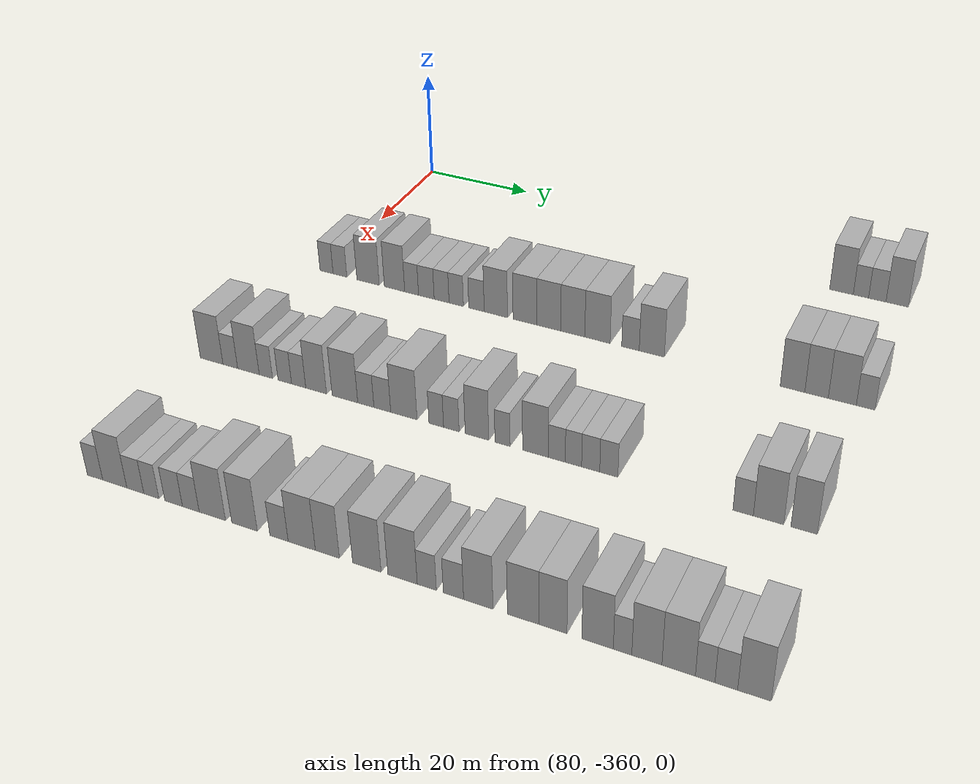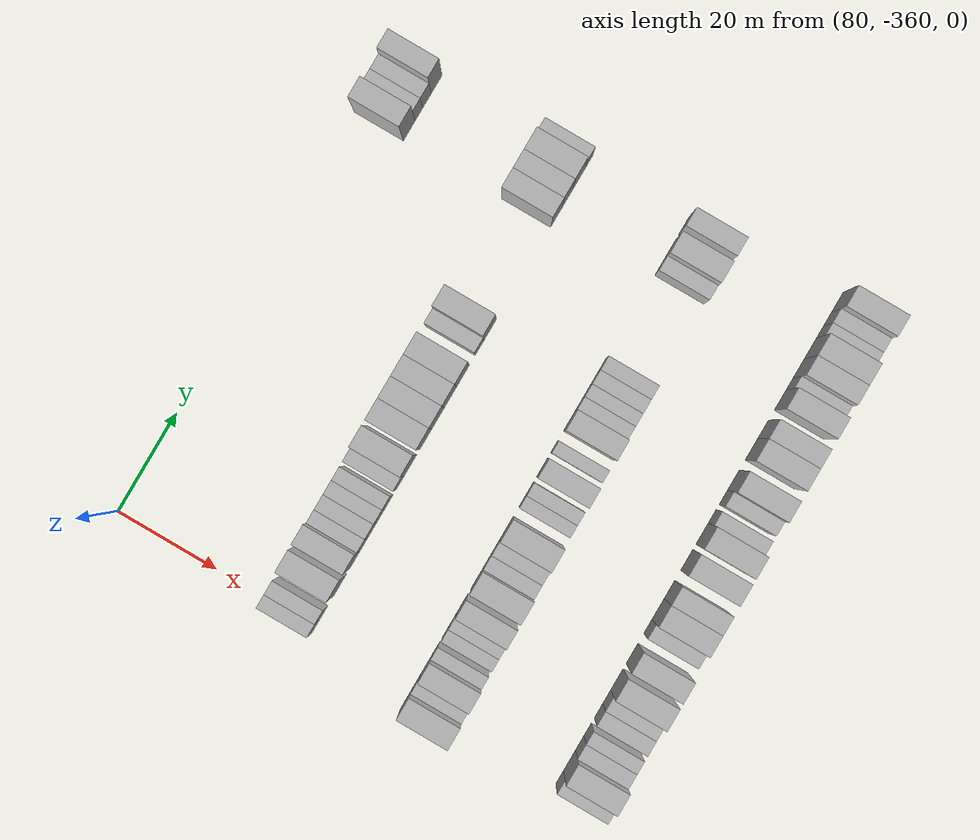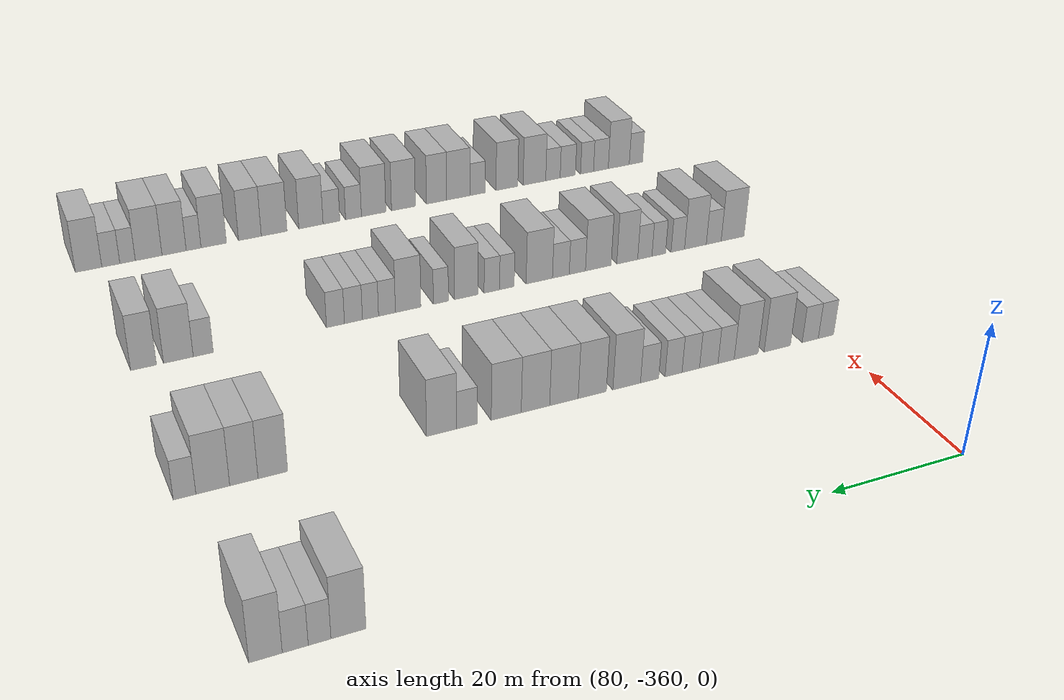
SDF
<sdf version="1.6">
 <world name="default">
  <model name="building_510">
   <static>1</static>
   <pose>85.0000 -276.7243 0 0.000000 0.000000 0.000000</pose>
   <link name="link">
    <pose>0 0 4.50 0 0 0</pose>
    <collision name="collision"><geometry><box><size>10.0000 4.0553 9.0000</size></box></geometry></collision>
    <visual name="visual">
     <cast_shadows>0</cast_shadows>
     <geometry><box><size>10.0000 4.0553 9.0000</size></box></geometry>
     <material>
      <script>
       <uri>model://HANNAS_wall/materials/scripts</uri>
       <uri>model://HANNAS_wall/materials/textures</uri>
       <name>vrc/HANNAS_wall</name>
      </script>
     </material>
    </visual>
   </link>
  </model>
  <model name="building_511">
   <static>1</static>
   <pose>85.0000 -273.3975 0 0.000000 0.000000 0.000000</pose>
   <link name="link">
    <pose>0 0 3.00 0 0 0</pose>
    <collision name="collision"><geometry><box><size>10.0000 2.5983 6.0000</size></box></geometry></collision>
    <visual name="visual">
     <cast_shadows>0</cast_shadows>
     <geometry><box><size>10.0000 2.5983 6.0000</size></box></geometry>
     <material>
      <script>
       <uri>model://HANNAS_wall/materials/scripts</uri>
       <uri>model://HANNAS_wall/materials/textures</uri>
       <name>vrc/HANNAS_wall</name>
      </script>
     </material>
    </visual>
   </link>
  </model>
  <model name="building_512">
   <static>1</static>
   <pose>85.0000 -270.6278 0 0.000000 0.000000 0.000000</pose>
   <link name="link">
    <pose>0 0 3.00 0 0 0</pose>
    <collision name="collision"><geometry><box><size>10.0000 2.9410 6.0000</size></box></geometry></collision>
    <visual name="visual">
     <cast_shadows>0</cast_shadows>
     <geometry><box><size>10.0000 2.9410 6.0000</size></box></geometry>
     <material>
      <script>
       <uri>model://HANNAS_wall/materials/scripts</uri>
       <uri>model://HANNAS_wall/materials/textures</uri>
       <name>vrc/HANNAS_wall</name>
      </script>
     </material>
    </visual>
   </link>
  </model>
  <model name="building_513">
   <static>1</static>
   <pose>85.0000 -267.2847 0 0.000000 0.000000 0.000000</pose>
   <link name="link">
    <pose>0 0 4.50 0 0 0</pose>
    <collision name="collision"><geometry><box><size>10.0000 3.7452 9.0000</size></box></geometry></collision>
    <visual name="visual">
     <cast_shadows>0</cast_shadows>
     <geometry><box><size>10.0000 3.7452 9.0000</size></box></geometry>
     <material>
      <script>
       <uri>model://HANNAS_wall/materials/scripts</uri>
       <uri>model://HANNAS_wall/materials/textures</uri>
       <name>vrc/HANNAS_wall</name>
      </script>
     </material>
    </visual>
   </link>
  </model>
  <model name="building_721">
   <static>1</static>
   <pose>115.0000 -359.6324 0 0.000000 0.000000 0.000000</pose>
   <link name="link">
    <pose>0 0 3.00 0 0 0</pose>
    <collision name="collision"><geometry><box><size>10.0000 2.6164 6.0000</size></box></geometry></collision>
    <visual name="visual">
     <cast_shadows>0</cast_shadows>
     <geometry><box><size>10.0000 2.6164 6.0000</size></box></geometry>
     <material>
      <script>
       <uri>model://HANNAS_wall/materials/scripts</uri>
       <uri>model://HANNAS_wall/materials/textures</uri>
       <name>vrc/HANNAS_wall</name>
      </script>
     </material>
    </visual>
   </link>
  </model>
  <model name="building_722">
   <static>1</static>
   <pose>115.0000 -356.9533 0 0.000000 0.000000 0.000000</pose>
   <link name="link">
    <pose>0 0 3.00 0 0 0</pose>
    <collision name="collision"><geometry><box><size>10.0000 2.7418 6.0000</size></box></geometry></collision>
    <visual name="visual">
     <cast_shadows>0</cast_shadows>
     <geometry><box><size>10.0000 2.7418 6.0000</size></box></geometry>
     <material>
      <script>
       <uri>model://HANNAS_wall/materials/scripts</uri>
       <uri>model://HANNAS_wall/materials/textures</uri>
       <name>vrc/HANNAS_wall</name>
      </script>
     </material>
    </visual>
   </link>
  </model>
  <model name="building_723">
   <static>1</static>
   <pose>115.0000 -351.3896 0 0.000000 0.000000 0.000000</pose>
   <link name="link">
    <pose>0 0 4.50 0 0 0</pose>
    <collision name="collision"><geometry><box><size>10.0000 4.3855 9.0000</size></box></geometry></collision>
    <visual name="visual">
     <cast_shadows>0</cast_shadows>
     <geometry><box><size>10.0000 4.3855 9.0000</size></box></geometry>
     <material>
      <script>
       <uri>model://HANNAS_wall/materials/scripts</uri>
       <uri>model://HANNAS_wall/materials/textures</uri>
       <name>vrc/HANNAS_wall</name>
      </script>
     </material>
    </visual>
   </link>
  </model>
  <model name="building_724">
   <static>1</static>
   <pose>115.0000 -346.2307 0 0.000000 0.000000 0.000000</pose>
   <link name="link">
    <pose>0 0 4.50 0 0 0</pose>
    <collision name="collision"><geometry><box><size>10.0000 3.9325 9.0000</size></box></geometry></collision>
    <visual name="visual">
     <cast_shadows>0</cast_shadows>
     <geometry><box><size>10.0000 3.9325 9.0000</size></box></geometry>
     <material>
      <script>
       <uri>model://HANNAS_wall/materials/scripts</uri>
       <uri>model://HANNAS_wall/materials/textures</uri>
       <name>vrc/HANNAS_wall</name>
      </script>
     </material>
    </visual>
   </link>
  </model>
  <model name="building_725">
   <static>1</static>
   <pose>115.0000 -342.9398 0 0.000000 0.000000 0.000000</pose>
   <link name="link">
    <pose>0 0 3.00 0 0 0</pose>
    <collision name="collision"><geometry><box><size>10.0000 2.6493 6.0000</size></box></geometry></collision>
    <visual name="visual">
     <cast_shadows>0</cast_shadows>
     <geometry><box><size>10.0000 2.6493 6.0000</size></box></geometry>
     <material>
      <script>
       <uri>model://HANNAS_wall/materials/scripts</uri>
       <uri>model://HANNAS_wall/materials/textures</uri>
       <name>vrc/HANNAS_wall</name>
      </script>
     </material>
    </visual>
   </link>
  </model>
  <model name="building_726">
   <static>1</static>
   <pose>115.0000 -340.1281 0 0.000000 0.000000 0.000000</pose>
   <link name="link">
    <pose>0 0 3.00 0 0 0</pose>
    <collision name="collision"><geometry><box><size>10.0000 2.9741 6.0000</size></box></geometry></collision>
    <visual name="visual">
     <cast_shadows>0</cast_shadows>
     <geometry><box><size>10.0000 2.9741 6.0000</size></box></geometry>
     <material>
      <script>
       <uri>model://HANNAS_wall/materials/scripts</uri>
       <uri>model://HANNAS_wall/materials/textures</uri>
       <name>vrc/HANNAS_wall</name>
      </script>
     </material>
    </visual>
   </link>
  </model>
  <model name="building_727">
   <static>1</static>
   <pose>115.0000 -337.2382 0 0.000000 0.000000 0.000000</pose>
   <link name="link">
    <pose>0 0 3.00 0 0 0</pose>
    <collision name="collision"><geometry><box><size>10.0000 2.8057 6.0000</size></box></geometry></collision>
    <visual name="visual">
     <cast_shadows>0</cast_shadows>
     <geometry><box><size>10.0000 2.8057 6.0000</size></box></geometry>
     <material>
      <script>
       <uri>model://HANNAS_wall/materials/scripts</uri>
       <uri>model://HANNAS_wall/materials/textures</uri>
       <name>vrc/HANNAS_wall</name>
      </script>
     </material>
    </visual>
   </link>
  </model>
  <model name="building_728">
   <static>1</static>
   <pose>115.0000 -334.4908 0 0.000000 0.000000 0.000000</pose>
   <link name="link">
    <pose>0 0 3.00 0 0 0</pose>
    <collision name="collision"><geometry><box><size>10.0000 2.6891 6.0000</size></box></geometry></collision>
    <visual name="visual">
     <cast_shadows>0</cast_shadows>
     <geometry><box><size>10.0000 2.6891 6.0000</size></box></geometry>
     <material>
      <script>
       <uri>model://HANNAS_wall/materials/scripts</uri>
       <uri>model://HANNAS_wall/materials/textures</uri>
       <name>vrc/HANNAS_wall</name>
      </script>
     </material>
    </visual>
   </link>
  </model>
  <model name="building_729">
   <static>1</static>
   <pose>115.0000 -330.7202 0 0.000000 0.000000 0.000000</pose>
   <link name="link">
    <pose>0 0 3.00 0 0 0</pose>
    <collision name="collision"><geometry><box><size>10.0000 2.8522 6.0000</size></box></geometry></collision>
    <visual name="visual">
     <cast_shadows>0</cast_shadows>
     <geometry><box><size>10.0000 2.8522 6.0000</size></box></geometry>
     <material>
      <script>
       <uri>model://HANNAS_wall/materials/scripts</uri>
       <uri>model://HANNAS_wall/materials/textures</uri>
       <name>vrc/HANNAS_wall</name>
      </script>
     </material>
    </visual>
   </link>
  </model>
  <model name="building_730">
   <static>1</static>
   <pose>115.0000 -327.1550 0 0.000000 0.000000 0.000000</pose>
   <link name="link">
    <pose>0 0 4.50 0 0 0</pose>
    <collision name="collision"><geometry><box><size>10.0000 4.2782 9.0000</size></box></geometry></collision>
    <visual name="visual">
     <cast_shadows>0</cast_shadows>
     <geometry><box><size>10.0000 4.2782 9.0000</size></box></geometry>
     <material>
      <script>
       <uri>model://HANNAS_wall/materials/scripts</uri>
       <uri>model://HANNAS_wall/materials/textures</uri>
       <name>vrc/HANNAS_wall</name>
      </script>
     </material>
    </visual>
   </link>
  </model>
  <model name="building_731">
   <static>1</static>
   <pose>115.0000 -321.8719 0 0.000000 0.000000 0.000000</pose>
   <link name="link">
    <pose>0 0 4.50 0 0 0</pose>
    <collision name="collision"><geometry><box><size>10.0000 4.2880 9.0000</size></box></geometry></collision>
    <visual name="visual">
     <cast_shadows>0</cast_shadows>
     <geometry><box><size>10.0000 4.2880 9.0000</size></box></geometry>
     <material>
      <script>
       <uri>model://HANNAS_wall/materials/scripts</uri>
       <uri>model://HANNAS_wall/materials/textures</uri>
       <name>vrc/HANNAS_wall</name>
      </script>
     </material>
    </visual>
   </link>
  </model>
  <model name="building_732">
   <static>1</static>
   <pose>115.0000 -317.5888 0 0.000000 0.000000 0.000000</pose>
   <link name="link">
    <pose>0 0 4.50 0 0 0</pose>
    <collision name="collision"><geometry><box><size>10.0000 4.2781 9.0000</size></box></geometry></collision>
    <visual name="visual">
     <cast_shadows>0</cast_shadows>
     <geometry><box><size>10.0000 4.2781 9.0000</size></box></geometry>
     <material>
      <script>
       <uri>model://HANNAS_wall/materials/scripts</uri>
       <uri>model://HANNAS_wall/materials/textures</uri>
       <name>vrc/HANNAS_wall</name>
      </script>
     </material>
    </visual>
   </link>
  </model>
  <model name="building_733">
   <static>1</static>
   <pose>115.0000 -313.3438 0 0.000000 0.000000 0.000000</pose>
   <link name="link">
    <pose>0 0 4.50 0 0 0</pose>
    <collision name="collision"><geometry><box><size>10.0000 4.2119 9.0000</size></box></geometry></collision>
    <visual name="visual">
     <cast_shadows>0</cast_shadows>
     <geometry><box><size>10.0000 4.2119 9.0000</size></box></geometry>
     <material>
      <script>
       <uri>model://HANNAS_wall/materials/scripts</uri>
       <uri>model://HANNAS_wall/materials/textures</uri>
       <name>vrc/HANNAS_wall</name>
      </script>
     </material>
    </visual>
   </link>
  </model>
  <model name="building_734">
   <static>1</static>
   <pose>115.0000 -309.0474 0 0.000000 0.000000 0.000000</pose>
   <link name="link">
    <pose>0 0 4.50 0 0 0</pose>
    <collision name="collision"><geometry><box><size>10.0000 4.3809 9.0000</size></box></geometry></collision>
    <visual name="visual">
     <cast_shadows>0</cast_shadows>
     <geometry><box><size>10.0000 4.3809 9.0000</size></box></geometry>
     <material>
      <script>
       <uri>model://HANNAS_wall/materials/scripts</uri>
       <uri>model://HANNAS_wall/materials/textures</uri>
       <name>vrc/HANNAS_wall</name>
      </script>
     </material>
    </visual>
   </link>
  </model>
  <model name="building_735">
   <static>1</static>
   <pose>115.0000 -303.3682 0 0.000000 0.000000 0.000000</pose>
   <link name="link">
    <pose>0 0 3.00 0 0 0</pose>
    <collision name="collision"><geometry><box><size>10.0000 2.9775 6.0000</size></box></geometry></collision>
    <visual name="visual">
     <cast_shadows>0</cast_shadows>
     <geometry><box><size>10.0000 2.9775 6.0000</size></box></geometry>
     <material>
      <script>
       <uri>model://HANNAS_wall/materials/scripts</uri>
       <uri>model://HANNAS_wall/materials/textures</uri>
       <name>vrc/HANNAS_wall</name>
      </script>
     </material>
    </visual>
   </link>
  </model>
  <model name="building_736">
   <static>1</static>
   <pose>115.0000 -299.7547 0 0.000000 0.000000 0.000000</pose>
   <link name="link">
    <pose>0 0 4.50 0 0 0</pose>
    <collision name="collision"><geometry><box><size>10.0000 4.2496 9.0000</size></box></geometry></collision>
    <visual name="visual">
     <cast_shadows>0</cast_shadows>
     <geometry><box><size>10.0000 4.2496 9.0000</size></box></geometry>
     <material>
      <script>
       <uri>model://HANNAS_wall/materials/scripts</uri>
       <uri>model://HANNAS_wall/materials/textures</uri>
       <name>vrc/HANNAS_wall</name>
      </script>
     </material>
    </visual>
   </link>
  </model>
  <model name="building_737">
   <static>1</static>
   <pose>115.0000 -276.8342 0 0.000000 0.000000 0.000000</pose>
   <link name="link">
    <pose>0 0 4.50 0 0 0</pose>
    <collision name="collision"><geometry><box><size>10.0000 3.8638 9.0000</size></box></geometry></collision>
    <visual name="visual">
     <cast_shadows>0</cast_shadows>
     <geometry><box><size>10.0000 3.8638 9.0000</size></box></geometry>
     <material>
      <script>
       <uri>model://HANNAS_wall/materials/scripts</uri>
       <uri>model://HANNAS_wall/materials/textures</uri>
       <name>vrc/HANNAS_wall</name>
      </script>
     </material>
    </visual>
   </link>
  </model>
  <model name="building_738">
   <static>1</static>
   <pose>115.0000 -273.0769 0 0.000000 0.000000 0.000000</pose>
   <link name="link">
    <pose>0 0 4.50 0 0 0</pose>
    <collision name="collision"><geometry><box><size>10.0000 3.6506 9.0000</size></box></geometry></collision>
    <visual name="visual">
     <cast_shadows>0</cast_shadows>
     <geometry><box><size>10.0000 3.6506 9.0000</size></box></geometry>
     <material>
      <script>
       <uri>model://HANNAS_wall/materials/scripts</uri>
       <uri>model://HANNAS_wall/materials/textures</uri>
       <name>vrc/HANNAS_wall</name>
      </script>
     </material>
    </visual>
   </link>
  </model>
  <model name="building_739">
   <static>1</static>
   <pose>115.0000 -269.1014 0 0.000000 0.000000 0.000000</pose>
   <link name="link">
    <pose>0 0 4.50 0 0 0</pose>
    <collision name="collision"><geometry><box><size>10.0000 4.3003 9.0000</size></box></geometry></collision>
    <visual name="visual">
     <cast_shadows>0</cast_shadows>
     <geometry><box><size>10.0000 4.3003 9.0000</size></box></geometry>
     <material>
      <script>
       <uri>model://HANNAS_wall/materials/scripts</uri>
       <uri>model://HANNAS_wall/materials/textures</uri>
       <name>vrc/HANNAS_wall</name>
      </script>
     </material>
    </visual>
   </link>
  </model>
  <model name="building_740">
   <static>1</static>
   <pose>115.0000 -265.5297 0 0.000000 0.000000 0.000000</pose>
   <link name="link">
    <pose>0 0 3.00 0 0 0</pose>
    <collision name="collision"><geometry><box><size>10.0000 2.8430 6.0000</size></box></geometry></collision>
    <visual name="visual">
     <cast_shadows>0</cast_shadows>
     <geometry><box><size>10.0000 2.8430 6.0000</size></box></geometry>
     <material>
      <script>
       <uri>model://HANNAS_wall/materials/scripts</uri>
       <uri>model://HANNAS_wall/materials/textures</uri>
       <name>vrc/HANNAS_wall</name>
      </script>
     </material>
    </visual>
   </link>
  </model>
  <model name="building_938">
   <static>1</static>
   <pose>145.0000 -362.3301 0 0.000000 0.000000 0.000000</pose>
   <link name="link">
    <pose>0 0 4.50 0 0 0</pose>
    <collision name="collision"><geometry><box><size>10.0000 4.2697 9.0000</size></box></geometry></collision>
    <visual name="visual">
     <cast_shadows>0</cast_shadows>
     <geometry><box><size>10.0000 4.2697 9.0000</size></box></geometry>
     <material>
      <script>
       <uri>model://HANNAS_wall/materials/scripts</uri>
       <uri>model://HANNAS_wall/materials/textures</uri>
       <name>vrc/HANNAS_wall</name>
      </script>
     </material>
    </visual>
   </link>
  </model>
  <model name="building_939">
   <static>1</static>
   <pose>145.0000 -358.8223 0 0.000000 0.000000 0.000000</pose>
   <link name="link">
    <pose>0 0 3.00 0 0 0</pose>
    <collision name="collision"><geometry><box><size>10.0000 2.7458 6.0000</size></box></geometry></collision>
    <visual name="visual">
     <cast_shadows>0</cast_shadows>
     <geometry><box><size>10.0000 2.7458 6.0000</size></box></geometry>
     <material>
      <script>
       <uri>model://HANNAS_wall/materials/scripts</uri>
       <uri>model://HANNAS_wall/materials/textures</uri>
       <name>vrc/HANNAS_wall</name>
      </script>
     </material>
    </visual>
   </link>
  </model>
  <model name="building_940">
   <static>1</static>
   <pose>145.0000 -355.4571 0 0.000000 0.000000 0.000000</pose>
   <link name="link">
    <pose>0 0 4.50 0 0 0</pose>
    <collision name="collision"><geometry><box><size>10.0000 3.9847 9.0000</size></box></geometry></collision>
    <visual name="visual">
     <cast_shadows>0</cast_shadows>
     <geometry><box><size>10.0000 3.9847 9.0000</size></box></geometry>
     <material>
      <script>
       <uri>model://HANNAS_wall/materials/scripts</uri>
       <uri>model://HANNAS_wall/materials/textures</uri>
       <name>vrc/HANNAS_wall</name>
      </script>
     </material>
    </visual>
   </link>
  </model>
  <model name="building_941">
   <static>1</static>
   <pose>145.0000 -352.2397 0 0.000000 0.000000 0.000000</pose>
   <link name="link">
    <pose>0 0 3.00 0 0 0</pose>
    <collision name="collision"><geometry><box><size>10.0000 2.4501 6.0000</size></box></geometry></collision>
    <visual name="visual">
     <cast_shadows>0</cast_shadows>
     <geometry><box><size>10.0000 2.4501 6.0000</size></box></geometry>
     <material>
      <script>
       <uri>model://HANNAS_wall/materials/scripts</uri>
       <uri>model://HANNAS_wall/materials/textures</uri>
       <name>vrc/HANNAS_wall</name>
      </script>
     </material>
    </visual>
   </link>
  </model>
  <model name="building_942">
   <static>1</static>
   <pose>145.0000 -348.7912 0 0.000000 0.000000 0.000000</pose>
   <link name="link">
    <pose>0 0 3.00 0 0 0</pose>
    <collision name="collision"><geometry><box><size>10.0000 2.4469 6.0000</size></box></geometry></collision>
    <visual name="visual">
     <cast_shadows>0</cast_shadows>
     <geometry><box><size>10.0000 2.4469 6.0000</size></box></geometry>
     <material>
      <script>
       <uri>model://HANNAS_wall/materials/scripts</uri>
       <uri>model://HANNAS_wall/materials/textures</uri>
       <name>vrc/HANNAS_wall</name>
      </script>
     </material>
    </visual>
   </link>
  </model>
  <model name="building_943">
   <static>1</static>
   <pose>145.0000 -346.2955 0 0.000000 0.000000 0.000000</pose>
   <link name="link">
    <pose>0 0 3.00 0 0 0</pose>
    <collision name="collision"><geometry><box><size>10.0000 2.5446 6.0000</size></box></geometry></collision>
    <visual name="visual">
     <cast_shadows>0</cast_shadows>
     <geometry><box><size>10.0000 2.5446 6.0000</size></box></geometry>
     <material>
      <script>
       <uri>model://HANNAS_wall/materials/scripts</uri>
       <uri>model://HANNAS_wall/materials/textures</uri>
       <name>vrc/HANNAS_wall</name>
      </script>
     </material>
    </visual>
   </link>
  </model>
  <model name="building_944">
   <static>1</static>
   <pose>145.0000 -343.1721 0 0.000000 0.000000 0.000000</pose>
   <link name="link">
    <pose>0 0 4.50 0 0 0</pose>
    <collision name="collision"><geometry><box><size>10.0000 3.7021 9.0000</size></box></geometry></collision>
    <visual name="visual">
     <cast_shadows>0</cast_shadows>
     <geometry><box><size>10.0000 3.7021 9.0000</size></box></geometry>
     <material>
      <script>
       <uri>model://HANNAS_wall/materials/scripts</uri>
       <uri>model://HANNAS_wall/materials/textures</uri>
       <name>vrc/HANNAS_wall</name>
      </script>
     </material>
    </visual>
   </link>
  </model>
  <model name="building_945">
   <static>1</static>
   <pose>145.0000 -338.0829 0 0.000000 0.000000 0.000000</pose>
   <link name="link">
    <pose>0 0 4.50 0 0 0</pose>
    <collision name="collision"><geometry><box><size>10.0000 4.4763 9.0000</size></box></geometry></collision>
    <visual name="visual">
     <cast_shadows>0</cast_shadows>
     <geometry><box><size>10.0000 4.4763 9.0000</size></box></geometry>
     <material>
      <script>
       <uri>model://HANNAS_wall/materials/scripts</uri>
       <uri>model://HANNAS_wall/materials/textures</uri>
       <name>vrc/HANNAS_wall</name>
      </script>
     </material>
    </visual>
   </link>
  </model>
  <model name="building_946">
   <static>1</static>
   <pose>145.0000 -334.4453 0 0.000000 0.000000 0.000000</pose>
   <link name="link">
    <pose>0 0 3.00 0 0 0</pose>
    <collision name="collision"><geometry><box><size>10.0000 2.7988 6.0000</size></box></geometry></collision>
    <visual name="visual">
     <cast_shadows>0</cast_shadows>
     <geometry><box><size>10.0000 2.7988 6.0000</size></box></geometry>
     <material>
      <script>
       <uri>model://HANNAS_wall/materials/scripts</uri>
       <uri>model://HANNAS_wall/materials/textures</uri>
       <name>vrc/HANNAS_wall</name>
      </script>
     </material>
    </visual>
   </link>
  </model>
  <model name="building_947">
   <static>1</static>
   <pose>145.0000 -331.6078 0 0.000000 0.000000 0.000000</pose>
   <link name="link">
    <pose>0 0 3.00 0 0 0</pose>
    <collision name="collision"><geometry><box><size>10.0000 2.8762 6.0000</size></box></geometry></collision>
    <visual name="visual">
     <cast_shadows>0</cast_shadows>
     <geometry><box><size>10.0000 2.8762 6.0000</size></box></geometry>
     <material>
      <script>
       <uri>model://HANNAS_wall/materials/scripts</uri>
       <uri>model://HANNAS_wall/materials/textures</uri>
       <name>vrc/HANNAS_wall</name>
      </script>
     </material>
    </visual>
   </link>
  </model>
  <model name="building_948">
   <static>1</static>
   <pose>145.0000 -327.9348 0 0.000000 0.000000 0.000000</pose>
   <link name="link">
    <pose>0 0 4.50 0 0 0</pose>
    <collision name="collision"><geometry><box><size>10.0000 4.4697 9.0000</size></box></geometry></collision>
    <visual name="visual">
     <cast_shadows>0</cast_shadows>
     <geometry><box><size>10.0000 4.4697 9.0000</size></box></geometry>
     <material>
      <script>
       <uri>model://HANNAS_wall/materials/scripts</uri>
       <uri>model://HANNAS_wall/materials/textures</uri>
       <name>vrc/HANNAS_wall</name>
      </script>
     </material>
    </visual>
   </link>
  </model>
  <model name="building_949">
   <static>1</static>
   <pose>145.0000 -322.4833 0 0.000000 0.000000 0.000000</pose>
   <link name="link">
    <pose>0 0 3.00 0 0 0</pose>
    <collision name="collision"><geometry><box><size>10.0000 2.4333 6.0000</size></box></geometry></collision>
    <visual name="visual">
     <cast_shadows>0</cast_shadows>
     <geometry><box><size>10.0000 2.4333 6.0000</size></box></geometry>
     <material>
      <script>
       <uri>model://HANNAS_wall/materials/scripts</uri>
       <uri>model://HANNAS_wall/materials/textures</uri>
       <name>vrc/HANNAS_wall</name>
      </script>
     </material>
    </visual>
   </link>
  </model>
  <model name="building_950">
   <static>1</static>
   <pose>145.0000 -319.9836 0 0.000000 0.000000 0.000000</pose>
   <link name="link">
    <pose>0 0 3.00 0 0 0</pose>
    <collision name="collision"><geometry><box><size>10.0000 2.5660 6.0000</size></box></geometry></collision>
    <visual name="visual">
     <cast_shadows>0</cast_shadows>
     <geometry><box><size>10.0000 2.5660 6.0000</size></box></geometry>
     <material>
      <script>
       <uri>model://HANNAS_wall/materials/scripts</uri>
       <uri>model://HANNAS_wall/materials/textures</uri>
       <name>vrc/HANNAS_wall</name>
      </script>
     </material>
    </visual>
   </link>
  </model>
  <model name="building_951">
   <static>1</static>
   <pose>145.0000 -315.7791 0 0.000000 0.000000 0.000000</pose>
   <link name="link">
    <pose>0 0 4.50 0 0 0</pose>
    <collision name="collision"><geometry><box><size>10.0000 3.8429 9.0000</size></box></geometry></collision>
    <visual name="visual">
     <cast_shadows>0</cast_shadows>
     <geometry><box><size>10.0000 3.8429 9.0000</size></box></geometry>
     <material>
      <script>
       <uri>model://HANNAS_wall/materials/scripts</uri>
       <uri>model://HANNAS_wall/materials/textures</uri>
       <name>vrc/HANNAS_wall</name>
      </script>
     </material>
    </visual>
   </link>
  </model>
  <model name="building_952">
   <static>1</static>
   <pose>145.0000 -311.6456 0 0.000000 0.000000 0.000000</pose>
   <link name="link">
    <pose>0 0 3.00 0 0 0</pose>
    <collision name="collision"><geometry><box><size>10.0000 2.4241 6.0000</size></box></geometry></collision>
    <visual name="visual">
     <cast_shadows>0</cast_shadows>
     <geometry><box><size>10.0000 2.4241 6.0000</size></box></geometry>
     <material>
      <script>
       <uri>model://HANNAS_wall/materials/scripts</uri>
       <uri>model://HANNAS_wall/materials/textures</uri>
       <name>vrc/HANNAS_wall</name>
      </script>
     </material>
    </visual>
   </link>
  </model>
  <model name="building_953">
   <static>1</static>
   <pose>145.0000 -306.4108 0 0.000000 0.000000 0.000000</pose>
   <link name="link">
    <pose>0 0 4.50 0 0 0</pose>
    <collision name="collision"><geometry><box><size>10.0000 4.0456 9.0000</size></box></geometry></collision>
    <visual name="visual">
     <cast_shadows>0</cast_shadows>
     <geometry><box><size>10.0000 4.0456 9.0000</size></box></geometry>
     <material>
      <script>
       <uri>model://HANNAS_wall/materials/scripts</uri>
       <uri>model://HANNAS_wall/materials/textures</uri>
       <name>vrc/HANNAS_wall</name>
      </script>
     </material>
    </visual>
   </link>
  </model>
  <model name="building_954">
   <static>1</static>
   <pose>145.0000 -303.0566 0 0.000000 0.000000 0.000000</pose>
   <link name="link">
    <pose>0 0 3.00 0 0 0</pose>
    <collision name="collision"><geometry><box><size>10.0000 2.6628 6.0000</size></box></geometry></collision>
    <visual name="visual">
     <cast_shadows>0</cast_shadows>
     <geometry><box><size>10.0000 2.6628 6.0000</size></box></geometry>
     <material>
      <script>
       <uri>model://HANNAS_wall/materials/scripts</uri>
       <uri>model://HANNAS_wall/materials/textures</uri>
       <name>vrc/HANNAS_wall</name>
      </script>
     </material>
    </visual>
   </link>
  </model>
  <model name="building_955">
   <static>1</static>
   <pose>145.0000 -300.4689 0 0.000000 0.000000 0.000000</pose>
   <link name="link">
    <pose>0 0 3.00 0 0 0</pose>
    <collision name="collision"><geometry><box><size>10.0000 2.5127 6.0000</size></box></geometry></collision>
    <visual name="visual">
     <cast_shadows>0</cast_shadows>
     <geometry><box><size>10.0000 2.5127 6.0000</size></box></geometry>
     <material>
      <script>
       <uri>model://HANNAS_wall/materials/scripts</uri>
       <uri>model://HANNAS_wall/materials/textures</uri>
       <name>vrc/HANNAS_wall</name>
      </script>
     </material>
    </visual>
   </link>
  </model>
  <model name="building_956">
   <static>1</static>
   <pose>145.0000 -297.8199 0 0.000000 0.000000 0.000000</pose>
   <link name="link">
    <pose>0 0 3.00 0 0 0</pose>
    <collision name="collision"><geometry><box><size>10.0000 2.7852 6.0000</size></box></geometry></collision>
    <visual name="visual">
     <cast_shadows>0</cast_shadows>
     <geometry><box><size>10.0000 2.7852 6.0000</size></box></geometry>
     <material>
      <script>
       <uri>model://HANNAS_wall/materials/scripts</uri>
       <uri>model://HANNAS_wall/materials/textures</uri>
       <name>vrc/HANNAS_wall</name>
      </script>
     </material>
    </visual>
   </link>
  </model>
  <model name="building_957">
   <static>1</static>
   <pose>145.0000 -295.0489 0 0.000000 0.000000 0.000000</pose>
   <link name="link">
    <pose>0 0 3.00 0 0 0</pose>
    <collision name="collision"><geometry><box><size>10.0000 2.7568 6.0000</size></box></geometry></collision>
    <visual name="visual">
     <cast_shadows>0</cast_shadows>
     <geometry><box><size>10.0000 2.7568 6.0000</size></box></geometry>
     <material>
      <script>
       <uri>model://HANNAS_wall/materials/scripts</uri>
       <uri>model://HANNAS_wall/materials/textures</uri>
       <name>vrc/HANNAS_wall</name>
      </script>
     </material>
    </visual>
   </link>
  </model>
  <model name="building_958">
   <static>1</static>
   <pose>145.0000 -275.3374 0 0.000000 0.000000 0.000000</pose>
   <link name="link">
    <pose>0 0 3.00 0 0 0</pose>
    <collision name="collision"><geometry><box><size>10.0000 2.8887 6.0000</size></box></geometry></collision>
    <visual name="visual">
     <cast_shadows>0</cast_shadows>
     <geometry><box><size>10.0000 2.8887 6.0000</size></box></geometry>
     <material>
      <script>
       <uri>model://HANNAS_wall/materials/scripts</uri>
       <uri>model://HANNAS_wall/materials/textures</uri>
       <name>vrc/HANNAS_wall</name>
      </script>
     </material>
    </visual>
   </link>
  </model>
  <model name="building_959">
   <static>1</static>
   <pose>145.0000 -271.7663 0 0.000000 0.000000 0.000000</pose>
   <link name="link">
    <pose>0 0 4.50 0 0 0</pose>
    <collision name="collision"><geometry><box><size>10.0000 4.2535 9.0000</size></box></geometry></collision>
    <visual name="visual">
     <cast_shadows>0</cast_shadows>
     <geometry><box><size>10.0000 4.2535 9.0000</size></box></geometry>
     <material>
      <script>
       <uri>model://HANNAS_wall/materials/scripts</uri>
       <uri>model://HANNAS_wall/materials/textures</uri>
       <name>vrc/HANNAS_wall</name>
      </script>
     </material>
    </visual>
   </link>
  </model>
  <model name="building_960">
   <static>1</static>
   <pose>145.0000 -266.8178 0 0.000000 0.000000 0.000000</pose>
   <link name="link">
    <pose>0 0 4.50 0 0 0</pose>
    <collision name="collision"><geometry><box><size>10.0000 3.6436 9.0000</size></box></geometry></collision>
    <visual name="visual">
     <cast_shadows>0</cast_shadows>
     <geometry><box><size>10.0000 3.6436 9.0000</size></box></geometry>
     <material>
      <script>
       <uri>model://HANNAS_wall/materials/scripts</uri>
       <uri>model://HANNAS_wall/materials/textures</uri>
       <name>vrc/HANNAS_wall</name>
      </script>
     </material>
    </visual>
   </link>
  </model>
  <model name="building_1172">
   <static>1</static>
   <pose>175.0000 -360.8354 0 0.000000 0.000000 0.000000</pose>
   <link name="link">
    <pose>0 0 3.00 0 0 0</pose>
    <collision name="collision"><geometry><box><size>10.0000 2.6614 6.0000</size></box></geometry></collision>
    <visual name="visual">
     <cast_shadows>0</cast_shadows>
     <geometry><box><size>10.0000 2.6614 6.0000</size></box></geometry>
     <material>
      <script>
       <uri>model://HANNAS_wall/materials/scripts</uri>
       <uri>model://HANNAS_wall/materials/textures</uri>
       <name>vrc/HANNAS_wall</name>
      </script>
     </material>
    </visual>
   </link>
  </model>
  <model name="building_1173">
   <static>1</static>
   <pose>175.0000 -357.4215 0 0.000000 0.000000 0.000000</pose>
   <link name="link">
    <pose>0 0 4.50 0 0 0</pose>
    <collision name="collision"><geometry><box><size>10.0000 4.1663 9.0000</size></box></geometry></collision>
    <visual name="visual">
     <cast_shadows>0</cast_shadows>
     <geometry><box><size>10.0000 4.1663 9.0000</size></box></geometry>
     <material>
      <script>
       <uri>model://HANNAS_wall/materials/scripts</uri>
       <uri>model://HANNAS_wall/materials/textures</uri>
       <name>vrc/HANNAS_wall</name>
      </script>
     </material>
    </visual>
   </link>
  </model>
  <model name="building_1174">
   <static>1</static>
   <pose>175.0000 -353.8883 0 0.000000 0.000000 0.000000</pose>
   <link name="link">
    <pose>0 0 3.00 0 0 0</pose>
    <collision name="collision"><geometry><box><size>10.0000 2.9003 6.0000</size></box></geometry></collision>
    <visual name="visual">
     <cast_shadows>0</cast_shadows>
     <geometry><box><size>10.0000 2.9003 6.0000</size></box></geometry>
     <material>
      <script>
       <uri>model://HANNAS_wall/materials/scripts</uri>
       <uri>model://HANNAS_wall/materials/textures</uri>
       <name>vrc/HANNAS_wall</name>
      </script>
     </material>
    </visual>
   </link>
  </model>
  <model name="building_1175">
   <static>1</static>
   <pose>175.0000 -351.1697 0 0.000000 0.000000 0.000000</pose>
   <link name="link">
    <pose>0 0 3.00 0 0 0</pose>
    <collision name="collision"><geometry><box><size>10.0000 2.5368 6.0000</size></box></geometry></collision>
    <visual name="visual">
     <cast_shadows>0</cast_shadows>
     <geometry><box><size>10.0000 2.5368 6.0000</size></box></geometry>
     <material>
      <script>
       <uri>model://HANNAS_wall/materials/scripts</uri>
       <uri>model://HANNAS_wall/materials/textures</uri>
       <name>vrc/HANNAS_wall</name>
      </script>
     </material>
    </visual>
   </link>
  </model>
  <model name="building_1176">
   <static>1</static>
   <pose>175.0000 -347.4289 0 0.000000 0.000000 0.000000</pose>
   <link name="link">
    <pose>0 0 3.00 0 0 0</pose>
    <collision name="collision"><geometry><box><size>10.0000 2.9449 6.0000</size></box></geometry></collision>
    <visual name="visual">
     <cast_shadows>0</cast_shadows>
     <geometry><box><size>10.0000 2.9449 6.0000</size></box></geometry>
     <material>
      <script>
       <uri>model://HANNAS_wall/materials/scripts</uri>
       <uri>model://HANNAS_wall/materials/textures</uri>
       <name>vrc/HANNAS_wall</name>
      </script>
     </material>
    </visual>
   </link>
  </model>
  <model name="building_1177">
   <static>1</static>
   <pose>175.0000 -344.5707 0 0.000000 0.000000 0.000000</pose>
   <link name="link">
    <pose>0 0 3.00 0 0 0</pose>
    <collision name="collision"><geometry><box><size>10.0000 2.7715 6.0000</size></box></geometry></collision>
    <visual name="visual">
     <cast_shadows>0</cast_shadows>
     <geometry><box><size>10.0000 2.7715 6.0000</size></box></geometry>
     <material>
      <script>
       <uri>model://HANNAS_wall/materials/scripts</uri>
       <uri>model://HANNAS_wall/materials/textures</uri>
       <name>vrc/HANNAS_wall</name>
      </script>
     </material>
    </visual>
   </link>
  </model>
  <model name="building_1178">
   <static>1</static>
   <pose>175.0000 -341.0360 0 0.000000 0.000000 0.000000</pose>
   <link name="link">
    <pose>0 0 4.50 0 0 0</pose>
    <collision name="collision"><geometry><box><size>10.0000 4.2980 9.0000</size></box></geometry></collision>
    <visual name="visual">
     <cast_shadows>0</cast_shadows>
     <geometry><box><size>10.0000 4.2980 9.0000</size></box></geometry>
     <material>
      <script>
       <uri>model://HANNAS_wall/materials/scripts</uri>
       <uri>model://HANNAS_wall/materials/textures</uri>
       <name>vrc/HANNAS_wall</name>
      </script>
     </material>
    </visual>
   </link>
  </model>
  <model name="building_1179">
   <static>1</static>
   <pose>175.0000 -335.8373 0 0.000000 0.000000 0.000000</pose>
   <link name="link">
    <pose>0 0 4.50 0 0 0</pose>
    <collision name="collision"><geometry><box><size>10.0000 4.0994 9.0000</size></box></geometry></collision>
    <visual name="visual">
     <cast_shadows>0</cast_shadows>
     <geometry><box><size>10.0000 4.0994 9.0000</size></box></geometry>
     <material>
      <script>
       <uri>model://HANNAS_wall/materials/scripts</uri>
       <uri>model://HANNAS_wall/materials/textures</uri>
       <name>vrc/HANNAS_wall</name>
      </script>
     </material>
    </visual>
   </link>
  </model>
  <model name="building_1180">
   <static>1</static>
   <pose>175.0000 -330.3593 0 0.000000 0.000000 0.000000</pose>
   <link name="link">
    <pose>0 0 3.00 0 0 0</pose>
    <collision name="collision"><geometry><box><size>10.0000 2.8566 6.0000</size></box></geometry></collision>
    <visual name="visual">
     <cast_shadows>0</cast_shadows>
     <geometry><box><size>10.0000 2.8566 6.0000</size></box></geometry>
     <material>
      <script>
       <uri>model://HANNAS_wall/materials/scripts</uri>
       <uri>model://HANNAS_wall/materials/textures</uri>
       <name>vrc/HANNAS_wall</name>
      </script>
     </material>
    </visual>
   </link>
  </model>
  <model name="building_1181">
   <static>1</static>
   <pose>175.0000 -326.8155 0 0.000000 0.000000 0.000000</pose>
   <link name="link">
    <pose>0 0 4.50 0 0 0</pose>
    <collision name="collision"><geometry><box><size>10.0000 4.2309 9.0000</size></box></geometry></collision>
    <visual name="visual">
     <cast_shadows>0</cast_shadows>
     <geometry><box><size>10.0000 4.2309 9.0000</size></box></geometry>
     <material>
      <script>
       <uri>model://HANNAS_wall/materials/scripts</uri>
       <uri>model://HANNAS_wall/materials/textures</uri>
       <name>vrc/HANNAS_wall</name>
      </script>
     </material>
    </visual>
   </link>
  </model>
  <model name="building_1182">
   <static>1</static>
   <pose>175.0000 -322.8659 0 0.000000 0.000000 0.000000</pose>
   <link name="link">
    <pose>0 0 4.50 0 0 0</pose>
    <collision name="collision"><geometry><box><size>10.0000 3.6682 9.0000</size></box></geometry></collision>
    <visual name="visual">
     <cast_shadows>0</cast_shadows>
     <geometry><box><size>10.0000 3.6682 9.0000</size></box></geometry>
     <material>
      <script>
       <uri>model://HANNAS_wall/materials/scripts</uri>
       <uri>model://HANNAS_wall/materials/textures</uri>
       <name>vrc/HANNAS_wall</name>
      </script>
     </material>
    </visual>
   </link>
  </model>
  <model name="building_1183">
   <static>1</static>
   <pose>175.0000 -316.9041 0 0.000000 0.000000 0.000000</pose>
   <link name="link">
    <pose>0 0 4.50 0 0 0</pose>
    <collision name="collision"><geometry><box><size>10.0000 4.2555 9.0000</size></box></geometry></collision>
    <visual name="visual">
     <cast_shadows>0</cast_shadows>
     <geometry><box><size>10.0000 4.2555 9.0000</size></box></geometry>
     <material>
      <script>
       <uri>model://HANNAS_wall/materials/scripts</uri>
       <uri>model://HANNAS_wall/materials/textures</uri>
       <name>vrc/HANNAS_wall</name>
      </script>
     </material>
    </visual>
   </link>
  </model>
  <model name="building_1184">
   <static>1</static>
   <pose>175.0000 -311.6233 0 0.000000 0.000000 0.000000</pose>
   <link name="link">
    <pose>0 0 4.50 0 0 0</pose>
    <collision name="collision"><geometry><box><size>10.0000 4.3059 9.0000</size></box></geometry></collision>
    <visual name="visual">
     <cast_shadows>0</cast_shadows>
     <geometry><box><size>10.0000 4.3059 9.0000</size></box></geometry>
     <material>
      <script>
       <uri>model://HANNAS_wall/materials/scripts</uri>
       <uri>model://HANNAS_wall/materials/textures</uri>
       <name>vrc/HANNAS_wall</name>
      </script>
     </material>
    </visual>
   </link>
  </model>
  <model name="building_1185">
   <static>1</static>
   <pose>175.0000 -308.0895 0 0.000000 0.000000 0.000000</pose>
   <link name="link">
    <pose>0 0 3.00 0 0 0</pose>
    <collision name="collision"><geometry><box><size>10.0000 2.7618 6.0000</size></box></geometry></collision>
    <visual name="visual">
     <cast_shadows>0</cast_shadows>
     <geometry><box><size>10.0000 2.7618 6.0000</size></box></geometry>
     <material>
      <script>
       <uri>model://HANNAS_wall/materials/scripts</uri>
       <uri>model://HANNAS_wall/materials/textures</uri>
       <name>vrc/HANNAS_wall</name>
      </script>
     </material>
    </visual>
   </link>
  </model>
  <model name="building_1186">
   <static>1</static>
   <pose>175.0000 -304.2656 0 0.000000 0.000000 0.000000</pose>
   <link name="link">
    <pose>0 0 3.00 0 0 0</pose>
    <collision name="collision"><geometry><box><size>10.0000 2.8861 6.0000</size></box></geometry></collision>
    <visual name="visual">
     <cast_shadows>0</cast_shadows>
     <geometry><box><size>10.0000 2.8861 6.0000</size></box></geometry>
     <material>
      <script>
       <uri>model://HANNAS_wall/materials/scripts</uri>
       <uri>model://HANNAS_wall/materials/textures</uri>
       <name>vrc/HANNAS_wall</name>
      </script>
     </material>
    </visual>
   </link>
  </model>
  <model name="building_1187">
   <static>1</static>
   <pose>175.0000 -300.7528 0 0.000000 0.000000 0.000000</pose>
   <link name="link">
    <pose>0 0 4.50 0 0 0</pose>
    <collision name="collision"><geometry><box><size>10.0000 4.1396 9.0000</size></box></geometry></collision>
    <visual name="visual">
     <cast_shadows>0</cast_shadows>
     <geometry><box><size>10.0000 4.1396 9.0000</size></box></geometry>
     <material>
      <script>
       <uri>model://HANNAS_wall/materials/scripts</uri>
       <uri>model://HANNAS_wall/materials/textures</uri>
       <name>vrc/HANNAS_wall</name>
      </script>
     </material>
    </visual>
   </link>
  </model>
  <model name="building_1188">
   <static>1</static>
   <pose>175.0000 -294.5169 0 0.000000 0.000000 0.000000</pose>
   <link name="link">
    <pose>0 0 4.50 0 0 0</pose>
    <collision name="collision"><geometry><box><size>10.0000 4.3323 9.0000</size></box></geometry></collision>
    <visual name="visual">
     <cast_shadows>0</cast_shadows>
     <geometry><box><size>10.0000 4.3323 9.0000</size></box></geometry>
     <material>
      <script>
       <uri>model://HANNAS_wall/materials/scripts</uri>
       <uri>model://HANNAS_wall/materials/textures</uri>
       <name>vrc/HANNAS_wall</name>
      </script>
     </material>
    </visual>
   </link>
  </model>
  <model name="building_1189">
   <static>1</static>
   <pose>175.0000 -290.4604 0 0.000000 0.000000 0.000000</pose>
   <link name="link">
    <pose>0 0 4.50 0 0 0</pose>
    <collision name="collision"><geometry><box><size>10.0000 3.7806 9.0000</size></box></geometry></collision>
    <visual name="visual">
     <cast_shadows>0</cast_shadows>
     <geometry><box><size>10.0000 3.7806 9.0000</size></box></geometry>
     <material>
      <script>
       <uri>model://HANNAS_wall/materials/scripts</uri>
       <uri>model://HANNAS_wall/materials/textures</uri>
       <name>vrc/HANNAS_wall</name>
      </script>
     </material>
    </visual>
   </link>
  </model>
  <model name="building_1190">
   <static>1</static>
   <pose>175.0000 -284.4978 0 0.000000 0.000000 0.000000</pose>
   <link name="link">
    <pose>0 0 4.50 0 0 0</pose>
    <collision name="collision"><geometry><box><size>10.0000 4.1446 9.0000</size></box></geometry></collision>
    <visual name="visual">
     <cast_shadows>0</cast_shadows>
     <geometry><box><size>10.0000 4.1446 9.0000</size></box></geometry>
     <material>
      <script>
       <uri>model://HANNAS_wall/materials/scripts</uri>
       <uri>model://HANNAS_wall/materials/textures</uri>
       <name>vrc/HANNAS_wall</name>
      </script>
     </material>
    </visual>
   </link>
  </model>
  <model name="building_1191">
   <static>1</static>
   <pose>175.0000 -281.2237 0 0.000000 0.000000 0.000000</pose>
   <link name="link">
    <pose>0 0 3.00 0 0 0</pose>
    <collision name="collision"><geometry><box><size>10.0000 2.4036 6.0000</size></box></geometry></collision>
    <visual name="visual">
     <cast_shadows>0</cast_shadows>
     <geometry><box><size>10.0000 2.4036 6.0000</size></box></geometry>
     <material>
      <script>
       <uri>model://HANNAS_wall/materials/scripts</uri>
       <uri>model://HANNAS_wall/materials/textures</uri>
       <name>vrc/HANNAS_wall</name>
      </script>
     </material>
    </visual>
   </link>
  </model>
  <model name="building_1192">
   <static>1</static>
   <pose>175.0000 -278.0830 0 0.000000 0.000000 0.000000</pose>
   <link name="link">
    <pose>0 0 4.50 0 0 0</pose>
    <collision name="collision"><geometry><box><size>10.0000 3.8776 9.0000</size></box></geometry></collision>
    <visual name="visual">
     <cast_shadows>0</cast_shadows>
     <geometry><box><size>10.0000 3.8776 9.0000</size></box></geometry>
     <material>
      <script>
       <uri>model://HANNAS_wall/materials/scripts</uri>
       <uri>model://HANNAS_wall/materials/textures</uri>
       <name>vrc/HANNAS_wall</name>
      </script>
     </material>
    </visual>
   </link>
  </model>
  <model name="building_1193">
   <static>1</static>
   <pose>175.0000 -274.0234 0 0.000000 0.000000 0.000000</pose>
   <link name="link">
    <pose>0 0 4.50 0 0 0</pose>
    <collision name="collision"><geometry><box><size>10.0000 4.2417 9.0000</size></box></geometry></collision>
    <visual name="visual">
     <cast_shadows>0</cast_shadows>
     <geometry><box><size>10.0000 4.2417 9.0000</size></box></geometry>
     <material>
      <script>
       <uri>model://HANNAS_wall/materials/scripts</uri>
       <uri>model://HANNAS_wall/materials/textures</uri>
       <name>vrc/HANNAS_wall</name>
      </script>
     </material>
    </visual>
   </link>
  </model>
  <model name="building_1194">
   <static>1</static>
   <pose>175.0000 -270.6836 0 0.000000 0.000000 0.000000</pose>
   <link name="link">
    <pose>0 0 3.00 0 0 0</pose>
    <collision name="collision"><geometry><box><size>10.0000 2.4378 6.0000</size></box></geometry></collision>
    <visual name="visual">
     <cast_shadows>0</cast_shadows>
     <geometry><box><size>10.0000 2.4378 6.0000</size></box></geometry>
     <material>
      <script>
       <uri>model://HANNAS_wall/materials/scripts</uri>
       <uri>model://HANNAS_wall/materials/textures</uri>
       <name>vrc/HANNAS_wall</name>
      </script>
     </material>
    </visual>
   </link>
  </model>
  <model name="building_1195">
   <static>1</static>
   <pose>175.0000 -268.0620 0 0.000000 0.000000 0.000000</pose>
   <link name="link">
    <pose>0 0 3.00 0 0 0</pose>
    <collision name="collision"><geometry><box><size>10.0000 2.8053 6.0000</size></box></geometry></collision>
    <visual name="visual">
     <cast_shadows>0</cast_shadows>
     <geometry><box><size>10.0000 2.8053 6.0000</size></box></geometry>
     <material>
      <script>
       <uri>model://HANNAS_wall/materials/scripts</uri>
       <uri>model://HANNAS_wall/materials/textures</uri>
       <name>vrc/HANNAS_wall</name>
      </script>
     </material>
    </visual>
   </link>
  </model>
  <model name="building_1196">
   <static>1</static>
   <pose>175.0000 -264.6063 0 0.000000 0.000000 0.000000</pose>
   <link name="link">
    <pose>0 0 4.50 0 0 0</pose>
    <collision name="collision"><geometry><box><size>10.0000 4.1061 9.0000</size></box></geometry></collision>
    <visual name="visual">
     <cast_shadows>0</cast_shadows>
     <geometry><box><size>10.0000 4.1061 9.0000</size></box></geometry>
     <material>
      <script>
       <uri>model://HANNAS_wall/materials/scripts</uri>
       <uri>model://HANNAS_wall/materials/textures</uri>
       <name>vrc/HANNAS_wall</name>
      </script>
     </material>
    </visual>
   </link>
  </model>
 </world>
</sdf>
